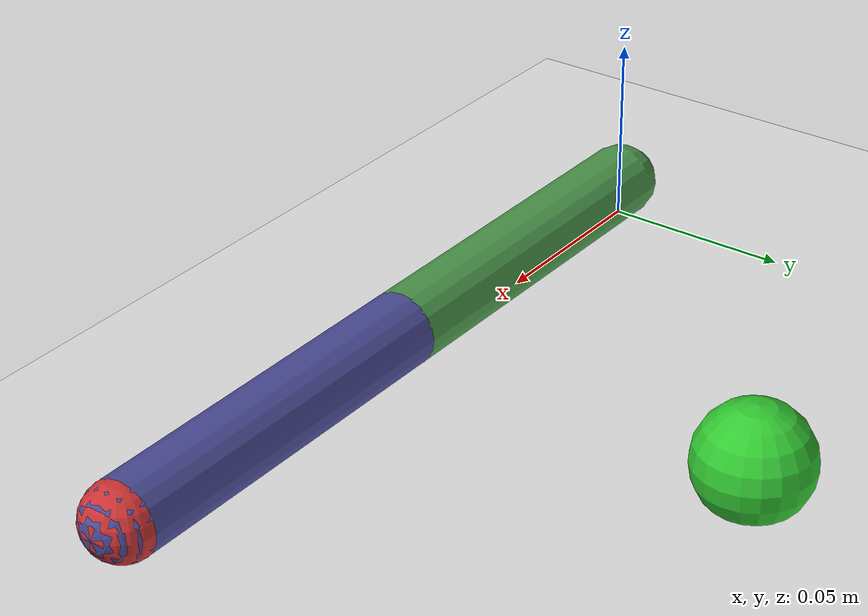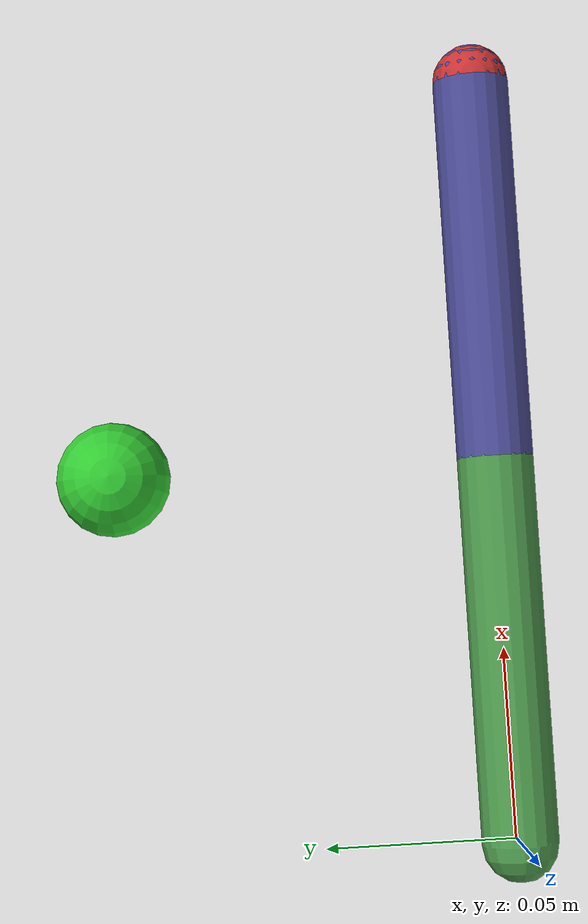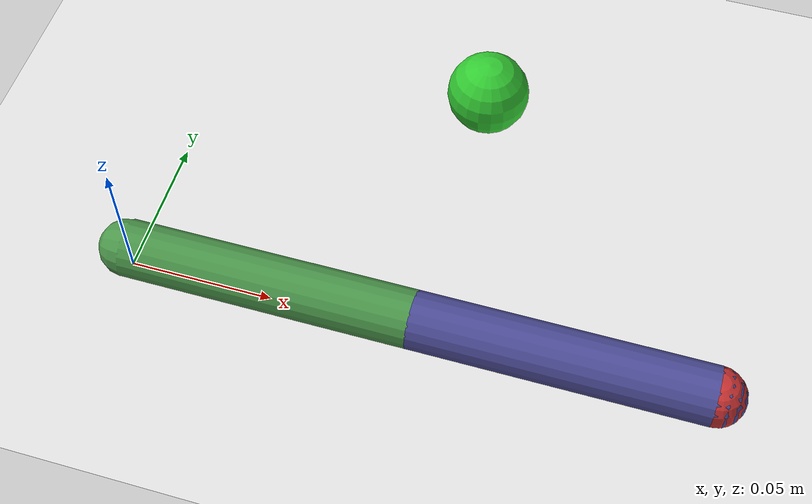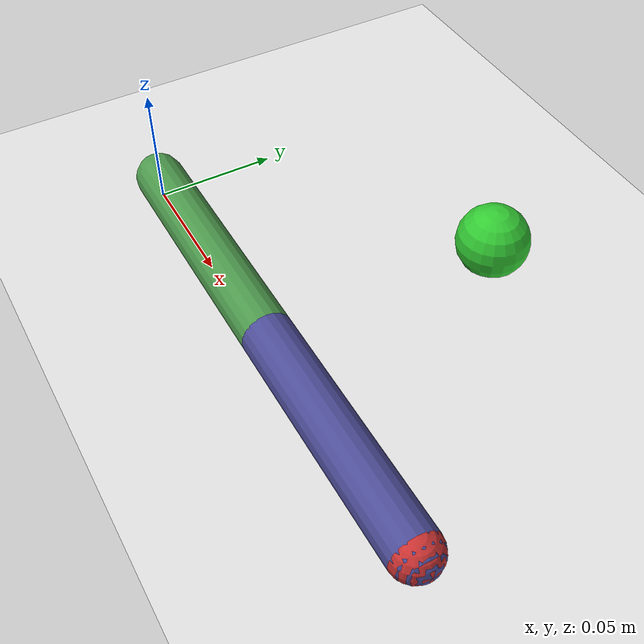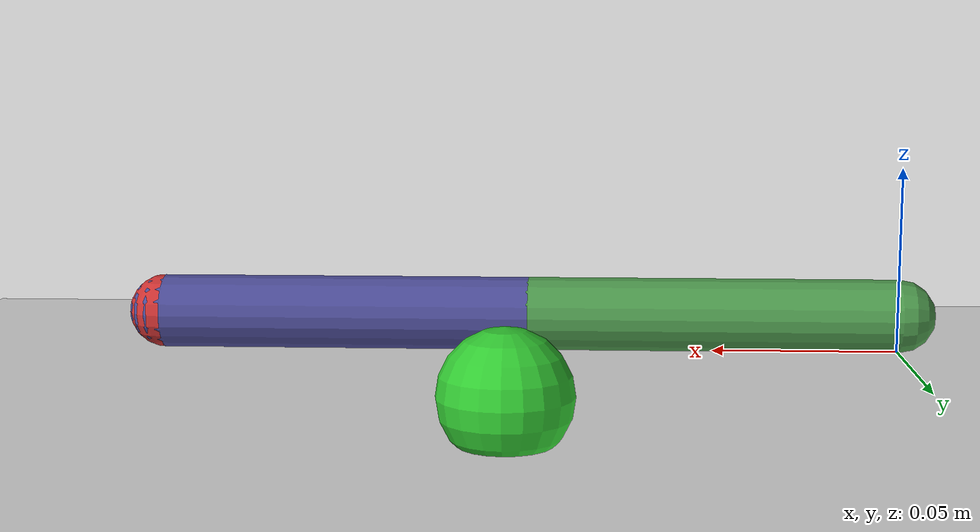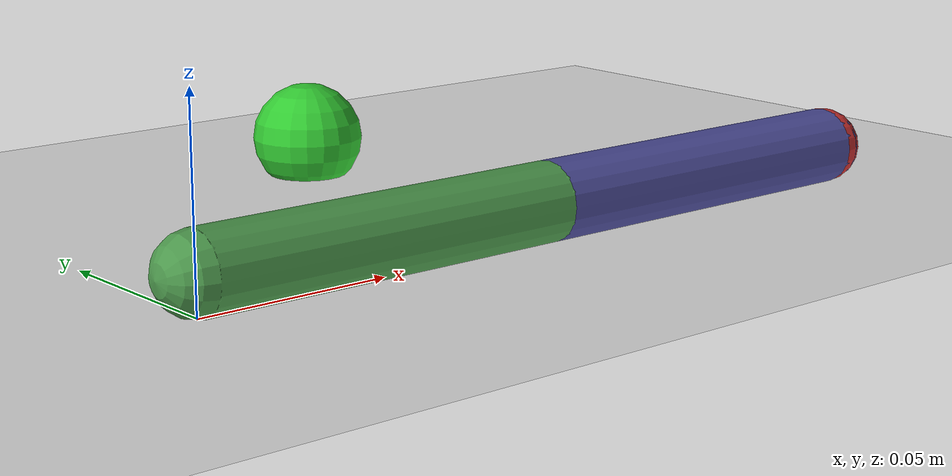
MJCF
<mujoco model="reacher">
  <option timestep="0.02" gravity="0 0 0"/>

  <default>
    <joint damping="0.1" limited="true"/>
    <geom contype="0" conaffinity="0"/>
  </default>

  <worldbody>
    <light diffuse="0.8 0.8 0.8" pos="0 0 2" dir="0 0 -1"/>
    <geom type="plane" size="1 1 0.01" rgba="0.9 0.9 0.9 1"/>

    <!-- Base pivot -->
    <body name="body0" pos="0 0 0.01">
      <joint name="joint0" type="hinge" axis="0 0 1" range="-3.14 3.14"/>
      <geom type="capsule" fromto="0 0 0  0.1 0 0" size="0.01" mass="0.1" rgba="0.3 0.6 0.3 1"/>

      <!-- Second link -->
      <body name="body1" pos="0.1 0 0">
        <joint name="joint1" type="hinge" axis="0 0 1" range="-3.14 3.14"/>
        <geom type="capsule" fromto="0 0 0  0.1 0 0" size="0.01" mass="0.1" rgba="0.3 0.3 0.6 1"/>

        <!-- Fingertip -->
        <body name="fingertip" pos="0.1 0 0">
          <geom name="fingertip" type="sphere" size="0.01" rgba="0.8 0.2 0.2 1"/>
        </body>
      </body>
    </body>

    <!-- Target (fixed, repositioned programmatically) -->
    <body name="target" pos="0.1 0.1 0.01">
      <geom name="target" type="sphere" size="0.015" rgba="0.2 0.8 0.2 1"/>
    </body>
  </worldbody>

  <actuator>
    <motor joint="joint0" gear="1" ctrlrange="-1 1" ctrllimited="true"/>
    <motor joint="joint1" gear="1" ctrlrange="-1 1" ctrllimited="true"/>
  </actuator>
</mujoco>
